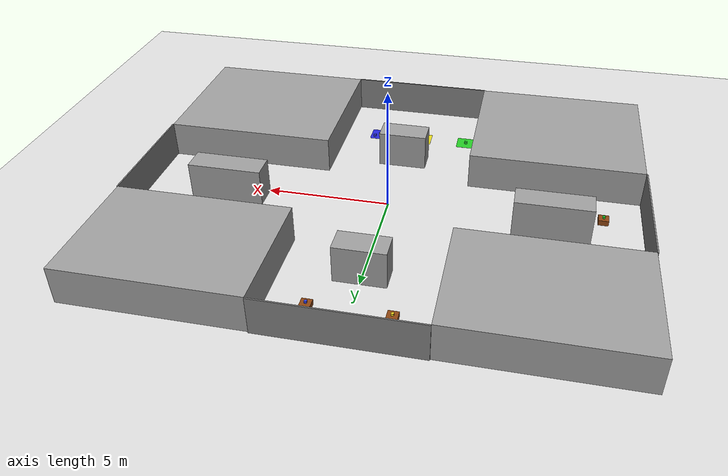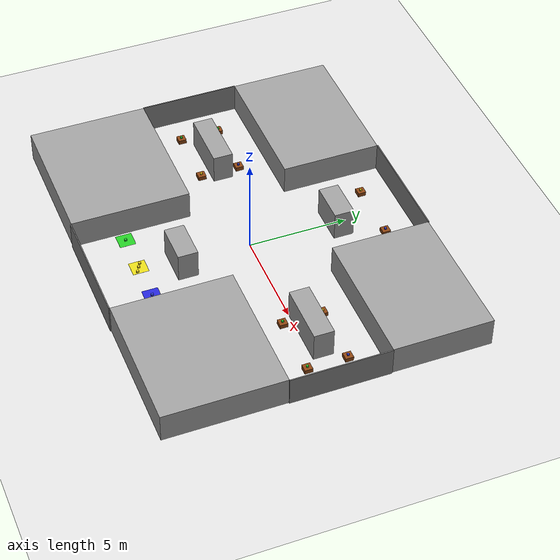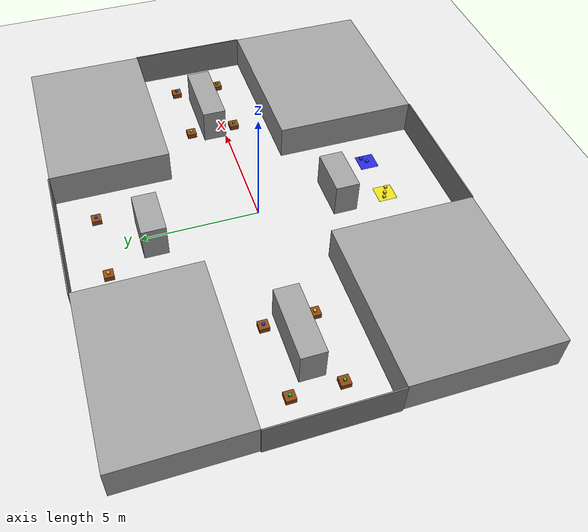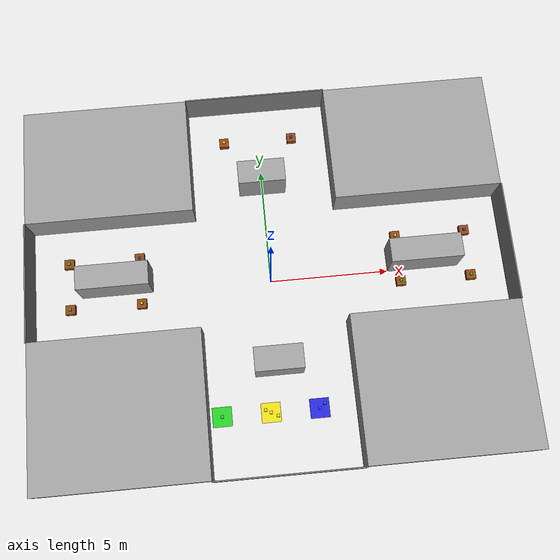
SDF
<sdf version="1.6">
 <world name="warehouse_cross">
  <light name="sun" type="directional">
   <pose>0 0 10 0 0 0</pose>
   <diffuse>0.8 0.8 0.8 1</diffuse>
   <specular>0.2 0.2 0.2 1</specular>
   <attenuation>
    <range>1000</range>
    <constant>0.9</constant>
    <linear>0.01</linear>
    <quadratic>0.001</quadratic>
   </attenuation>
   <direction>-0.5 0.1 -0.9</direction>
  </light>
  <model name="ground_plane">
   <static>true</static>
   <link name="link">
    <collision name="collision">
     <geometry><plane><normal>0 0 1</normal><size>100 100</size></plane></geometry>
     <surface><friction><ode><mu>100</mu><mu2>50</mu2></ode></friction></surface>
    </collision>
    <visual name="visual">
     <cast_shadows>false</cast_shadows>
     <geometry><plane><normal>0 0 1</normal><size>100 100</size></plane></geometry>
     <material><ambient>0.88 0.88 0.88 1</ambient><diffuse>0.88 0.88 0.88 1</diffuse></material>
    </visual>
   </link>
  </model>
  <physics name="default_physics" default="0" type="ode">
   <gravity>0 0 -9.8</gravity>
   <ode>
    <solver><type>quick</type><iters>50</iters><sor>1.3</sor></solver>
    <constraints>
     <cfm>0</cfm>
     <erp>0.2</erp>
     <contact_max_correcting_vel>100</contact_max_correcting_vel>
     <contact_surface_layer>0.001</contact_surface_layer>
    </constraints>
   </ode>
   <real_time_update_rate>1000</real_time_update_rate>
   <max_step_size>0.001</max_step_size>
  </physics>
  <model name="boundary_north">
   <static>true</static>
   <pose>0.0 8.025 0.75 0 0 0</pose>
   <link name="link">
    <collision name="col"><geometry><box><size>6.0 0.05 1.5</size></box></geometry></collision>
    <visual name="vis">
     <geometry><box><size>6.0 0.05 1.5</size></box></geometry>
     <material><ambient>0.5 0.5 0.5 1</ambient><diffuse>0.5 0.5 0.5 1</diffuse></material>
    </visual>
   </link>
  </model>
  <model name="boundary_south">
   <static>true</static>
   <pose>0.0 -8.025 0.75 0 0 0</pose>
   <link name="link">
    <collision name="col"><geometry><box><size>6.0 0.05 1.5</size></box></geometry></collision>
    <visual name="vis">
     <geometry><box><size>6.0 0.05 1.5</size></box></geometry>
     <material><ambient>0.5 0.5 0.5 1</ambient><diffuse>0.5 0.5 0.5 1</diffuse></material>
    </visual>
   </link>
  </model>
  <model name="boundary_west">
   <static>true</static>
   <pose>-10.025 0.5 0.75 0 0 0</pose>
   <link name="link">
    <collision name="col"><geometry><box><size>0.05 5.0 1.5</size></box></geometry></collision>
    <visual name="vis">
     <geometry><box><size>0.05 5.0 1.5</size></box></geometry>
     <material><ambient>0.5 0.5 0.5 1</ambient><diffuse>0.5 0.5 0.5 1</diffuse></material>
    </visual>
   </link>
  </model>
  <model name="boundary_east">
   <static>true</static>
   <pose>10.025 0.5 0.75 0 0 0</pose>
   <link name="link">
    <collision name="col"><geometry><box><size>0.05 5.0 1.5</size></box></geometry></collision>
    <visual name="vis">
     <geometry><box><size>0.05 5.0 1.5</size></box></geometry>
     <material><ambient>0.5 0.5 0.5 1</ambient><diffuse>0.5 0.5 0.5 1</diffuse></material>
    </visual>
   </link>
  </model>
  <model name="wall_nw">
   <static>true</static>
   <pose>-6.5 5.5 0.75 0 0 0</pose>
   <link name="link">
    <collision name="col"><geometry><box><size>7.0 5.0 1.5</size></box></geometry></collision>
    <visual name="vis">
     <geometry><box><size>7.0 5.0 1.5</size></box></geometry>
     <material><ambient>0.62 0.62 0.62 1</ambient><diffuse>0.62 0.62 0.62 1</diffuse></material>
    </visual>
   </link>
  </model>
  <model name="wall_ne">
   <static>true</static>
   <pose>6.5 5.5 0.75 0 0 0</pose>
   <link name="link">
    <collision name="col"><geometry><box><size>7.0 5.0 1.5</size></box></geometry></collision>
    <visual name="vis">
     <geometry><box><size>7.0 5.0 1.5</size></box></geometry>
     <material><ambient>0.62 0.62 0.62 1</ambient><diffuse>0.62 0.62 0.62 1</diffuse></material>
    </visual>
   </link>
  </model>
  <model name="wall_n_btl">
   <static>true</static>
   <pose>0.0 4.5 0.75 0 0 0</pose>
   <link name="link">
    <collision name="col"><geometry><box><size>2.0 1.0 1.5</size></box></geometry></collision>
    <visual name="vis">
     <geometry><box><size>2.0 1.0 1.5</size></box></geometry>
     <material><ambient>0.62 0.62 0.62 1</ambient><diffuse>0.62 0.62 0.62 1</diffuse></material>
    </visual>
   </link>
  </model>
  <model name="wall_sw">
   <static>true</static>
   <pose>-6.5 -5.0 0.75 0 0 0</pose>
   <link name="link">
    <collision name="col"><geometry><box><size>7.0 6.0 1.5</size></box></geometry></collision>
    <visual name="vis">
     <geometry><box><size>7.0 6.0 1.5</size></box></geometry>
     <material><ambient>0.62 0.62 0.62 1</ambient><diffuse>0.62 0.62 0.62 1</diffuse></material>
    </visual>
   </link>
  </model>
  <model name="wall_se">
   <static>true</static>
   <pose>6.5 -5.0 0.75 0 0 0</pose>
   <link name="link">
    <collision name="col"><geometry><box><size>7.0 6.0 1.5</size></box></geometry></collision>
    <visual name="vis">
     <geometry><box><size>7.0 6.0 1.5</size></box></geometry>
     <material><ambient>0.62 0.62 0.62 1</ambient><diffuse>0.62 0.62 0.62 1</diffuse></material>
    </visual>
   </link>
  </model>
  <model name="wall_s_btl">
   <static>true</static>
   <pose>0.0 -3.5 0.75 0 0 0</pose>
   <link name="link">
    <collision name="col"><geometry><box><size>2.0 1.0 1.5</size></box></geometry></collision>
    <visual name="vis">
     <geometry><box><size>2.0 1.0 1.5</size></box></geometry>
     <material><ambient>0.62 0.62 0.62 1</ambient><diffuse>0.62 0.62 0.62 1</diffuse></material>
    </visual>
   </link>
  </model>
  <model name="wall_corridor_w">
   <static>true</static>
   <pose>-6.5 0.5 0.75 0 0 0</pose>
   <link name="link">
    <collision name="col"><geometry><box><size>3.0 1.0 1.5</size></box></geometry></collision>
    <visual name="vis">
     <geometry><box><size>3.0 1.0 1.5</size></box></geometry>
     <material><ambient>0.62 0.62 0.62 1</ambient><diffuse>0.62 0.62 0.62 1</diffuse></material>
    </visual>
   </link>
  </model>
  <model name="wall_corridor_e">
   <static>true</static>
   <pose>6.5 0.5 0.75 0 0 0</pose>
   <link name="link">
    <collision name="col"><geometry><box><size>3.0 1.0 1.5</size></box></geometry></collision>
    <visual name="vis">
     <geometry><box><size>3.0 1.0 1.5</size></box></geometry>
     <material><ambient>0.62 0.62 0.62 1</ambient><diffuse>0.62 0.62 0.62 1</diffuse></material>
    </visual>
   </link>
  </model>
  <model name="shelf_0">
   <static>true</static>
   <pose>-1.5 6.5 0.11 0 0 0</pose>
   <link name="link">
    <collision name="col"><geometry><box><size>0.4 0.4 0.22</size></box></geometry></collision>
    <visual name="vis">
     <geometry><box><size>0.4 0.4 0.22</size></box></geometry>
     <material><ambient>0.55 0.27 0.07 1</ambient><diffuse>0.55 0.27 0.07 1</diffuse></material>
    </visual>
   </link>
  </model>
  <model name="shelf_1">
   <static>true</static>
   <pose>1.5 6.5 0.11 0 0 0</pose>
   <link name="link">
    <collision name="col"><geometry><box><size>0.4 0.4 0.22</size></box></geometry></collision>
    <visual name="vis">
     <geometry><box><size>0.4 0.4 0.22</size></box></geometry>
     <material><ambient>0.55 0.27 0.07 1</ambient><diffuse>0.55 0.27 0.07 1</diffuse></material>
    </visual>
   </link>
  </model>
  <model name="shelf_2">
   <static>true</static>
   <pose>-8.5 1.5 0.11 0 0 0</pose>
   <link name="link">
    <collision name="col"><geometry><box><size>0.4 0.4 0.22</size></box></geometry></collision>
    <visual name="vis">
     <geometry><box><size>0.4 0.4 0.22</size></box></geometry>
     <material><ambient>0.55 0.27 0.07 1</ambient><diffuse>0.55 0.27 0.07 1</diffuse></material>
    </visual>
   </link>
  </model>
  <model name="shelf_3">
   <static>true</static>
   <pose>-5.5 1.5 0.11 0 0 0</pose>
   <link name="link">
    <collision name="col"><geometry><box><size>0.4 0.4 0.22</size></box></geometry></collision>
    <visual name="vis">
     <geometry><box><size>0.4 0.4 0.22</size></box></geometry>
     <material><ambient>0.55 0.27 0.07 1</ambient><diffuse>0.55 0.27 0.07 1</diffuse></material>
    </visual>
   </link>
  </model>
  <model name="shelf_4">
   <static>true</static>
   <pose>-8.5 -0.5 0.11 0 0 0</pose>
   <link name="link">
    <collision name="col"><geometry><box><size>0.4 0.4 0.22</size></box></geometry></collision>
    <visual name="vis">
     <geometry><box><size>0.4 0.4 0.22</size></box></geometry>
     <material><ambient>0.55 0.27 0.07 1</ambient><diffuse>0.55 0.27 0.07 1</diffuse></material>
    </visual>
   </link>
  </model>
  <model name="shelf_5">
   <static>true</static>
   <pose>-5.5 -0.5 0.11 0 0 0</pose>
   <link name="link">
    <collision name="col"><geometry><box><size>0.4 0.4 0.22</size></box></geometry></collision>
    <visual name="vis">
     <geometry><box><size>0.4 0.4 0.22</size></box></geometry>
     <material><ambient>0.55 0.27 0.07 1</ambient><diffuse>0.55 0.27 0.07 1</diffuse></material>
    </visual>
   </link>
  </model>
  <model name="shelf_6">
   <static>true</static>
   <pose>5.5 1.5 0.11 0 0 0</pose>
   <link name="link">
    <collision name="col"><geometry><box><size>0.4 0.4 0.22</size></box></geometry></collision>
    <visual name="vis">
     <geometry><box><size>0.4 0.4 0.22</size></box></geometry>
     <material><ambient>0.55 0.27 0.07 1</ambient><diffuse>0.55 0.27 0.07 1</diffuse></material>
    </visual>
   </link>
  </model>
  <model name="shelf_7">
   <static>true</static>
   <pose>8.5 1.5 0.11 0 0 0</pose>
   <link name="link">
    <collision name="col"><geometry><box><size>0.4 0.4 0.22</size></box></geometry></collision>
    <visual name="vis">
     <geometry><box><size>0.4 0.4 0.22</size></box></geometry>
     <material><ambient>0.55 0.27 0.07 1</ambient><diffuse>0.55 0.27 0.07 1</diffuse></material>
    </visual>
   </link>
  </model>
  <model name="shelf_8">
   <static>true</static>
   <pose>5.5 -0.5 0.11 0 0 0</pose>
   <link name="link">
    <collision name="col"><geometry><box><size>0.4 0.4 0.22</size></box></geometry></collision>
    <visual name="vis">
     <geometry><box><size>0.4 0.4 0.22</size></box></geometry>
     <material><ambient>0.55 0.27 0.07 1</ambient><diffuse>0.55 0.27 0.07 1</diffuse></material>
    </visual>
   </link>
  </model>
  <model name="shelf_9">
   <static>true</static>
   <pose>8.5 -0.5 0.11 0 0 0</pose>
   <link name="link">
    <collision name="col"><geometry><box><size>0.4 0.4 0.22</size></box></geometry></collision>
    <visual name="vis">
     <geometry><box><size>0.4 0.4 0.22</size></box></geometry>
     <material><ambient>0.55 0.27 0.07 1</ambient><diffuse>0.55 0.27 0.07 1</diffuse></material>
    </visual>
   </link>
  </model>
  <model name="delivery_A">
   <static>true</static>
   <pose>-2.5 -5.5 0.001 0 0 0</pose>
   <link name="link">
    <visual name="vis">
     <geometry><box><size>0.8 0.8 0.002</size></box></geometry>
     <material><ambient>0.15 0.80 0.15 1</ambient><diffuse>0.15 0.80 0.15 1</diffuse></material>
    </visual>
   </link>
  </model>
  <model name="delivery_B">
   <static>true</static>
   <pose>-0.5 -5.5 0.001 0 0 0</pose>
   <link name="link">
    <visual name="vis">
     <geometry><box><size>0.8 0.8 0.002</size></box></geometry>
     <material><ambient>0.90 0.85 0.10 1</ambient><diffuse>0.90 0.85 0.10 1</diffuse></material>
    </visual>
   </link>
  </model>
  <model name="delivery_C">
   <static>true</static>
   <pose>1.5 -5.5 0.001 0 0 0</pose>
   <link name="link">
    <visual name="vis">
     <geometry><box><size>0.8 0.8 0.002</size></box></geometry>
     <material><ambient>0.15 0.15 0.85 1</ambient><diffuse>0.15 0.15 0.85 1</diffuse></material>
    </visual>
   </link>
  </model>
  <model name="cargo_shelf_0">
   <static>true</static>
   <pose>-1.5 6.5 0.26 0 0 0</pose>
   <link name="link">
    <visual name="vis">
     <geometry><box><size>0.10 0.10 0.08</size></box></geometry>
     <material><ambient>0.95 0.82 0.10 1</ambient><diffuse>0.95 0.82 0.10 1</diffuse></material>
    </visual>
    <collision name="col"><geometry><box><size>0.10 0.10 0.08</size></box></geometry></collision>
   </link>
  </model>
  <model name="cargo_shelf_1">
   <static>true</static>
   <pose>1.5 6.5 0.26 0 0 0</pose>
   <link name="link">
    <visual name="vis">
     <geometry><box><size>0.10 0.10 0.08</size></box></geometry>
     <material><ambient>0.20 0.25 0.90 1</ambient><diffuse>0.20 0.25 0.90 1</diffuse></material>
    </visual>
    <collision name="col"><geometry><box><size>0.10 0.10 0.08</size></box></geometry></collision>
   </link>
  </model>
  <model name="cargo_shelf_2">
   <static>true</static>
   <pose>-8.5 1.5 0.26 0 0 0</pose>
   <link name="link">
    <visual name="vis">
     <geometry><box><size>0.10 0.10 0.08</size></box></geometry>
     <material><ambient>0.12 0.80 0.18 1</ambient><diffuse>0.12 0.80 0.18 1</diffuse></material>
    </visual>
    <collision name="col"><geometry><box><size>0.10 0.10 0.08</size></box></geometry></collision>
   </link>
  </model>
  <model name="cargo_shelf_3">
   <static>true</static>
   <pose>-5.5 1.5 0.26 0 0 0</pose>
   <link name="link">
    <visual name="vis">
     <geometry><box><size>0.10 0.10 0.08</size></box></geometry>
     <material><ambient>0.20 0.25 0.90 1</ambient><diffuse>0.20 0.25 0.90 1</diffuse></material>
    </visual>
    <collision name="col"><geometry><box><size>0.10 0.10 0.08</size></box></geometry></collision>
   </link>
  </model>
  <model name="cargo_shelf_4">
   <static>true</static>
   <pose>-8.5 -0.5 0.26 0 0 0</pose>
   <link name="link">
    <visual name="vis">
     <geometry><box><size>0.10 0.10 0.08</size></box></geometry>
     <material><ambient>0.12 0.80 0.18 1</ambient><diffuse>0.12 0.80 0.18 1</diffuse></material>
    </visual>
    <collision name="col"><geometry><box><size>0.10 0.10 0.08</size></box></geometry></collision>
   </link>
  </model>
  <model name="cargo_shelf_5">
   <static>true</static>
   <pose>-5.5 -0.5 0.26 0 0 0</pose>
   <link name="link">
    <visual name="vis">
     <geometry><box><size>0.10 0.10 0.08</size></box></geometry>
     <material><ambient>0.95 0.82 0.10 1</ambient><diffuse>0.95 0.82 0.10 1</diffuse></material>
    </visual>
    <collision name="col"><geometry><box><size>0.10 0.10 0.08</size></box></geometry></collision>
   </link>
  </model>
  <model name="cargo_shelf_6">
   <static>true</static>
   <pose>5.5 1.5 0.26 0 0 0</pose>
   <link name="link">
    <visual name="vis">
     <geometry><box><size>0.10 0.10 0.08</size></box></geometry>
     <material><ambient>0.95 0.82 0.10 1</ambient><diffuse>0.95 0.82 0.10 1</diffuse></material>
    </visual>
    <collision name="col"><geometry><box><size>0.10 0.10 0.08</size></box></geometry></collision>
   </link>
  </model>
  <model name="cargo_shelf_7">
   <static>true</static>
   <pose>8.5 1.5 0.26 0 0 0</pose>
   <link name="link">
    <visual name="vis">
     <geometry><box><size>0.10 0.10 0.08</size></box></geometry>
     <material><ambient>0.20 0.25 0.90 1</ambient><diffuse>0.20 0.25 0.90 1</diffuse></material>
    </visual>
    <collision name="col"><geometry><box><size>0.10 0.10 0.08</size></box></geometry></collision>
   </link>
  </model>
  <model name="cargo_shelf_8">
   <static>true</static>
   <pose>5.5 -0.5 0.26 0 0 0</pose>
   <link name="link">
    <visual name="vis">
     <geometry><box><size>0.10 0.10 0.08</size></box></geometry>
     <material><ambient>0.12 0.80 0.18 1</ambient><diffuse>0.12 0.80 0.18 1</diffuse></material>
    </visual>
    <collision name="col"><geometry><box><size>0.10 0.10 0.08</size></box></geometry></collision>
   </link>
  </model>
  <model name="cargo_shelf_9">
   <static>true</static>
   <pose>8.5 -0.5 0.26 0 0 0</pose>
   <link name="link">
    <visual name="vis">
     <geometry><box><size>0.10 0.10 0.08</size></box></geometry>
     <material><ambient>0.12 0.80 0.18 1</ambient><diffuse>0.12 0.80 0.18 1</diffuse></material>
    </visual>
    <collision name="col"><geometry><box><size>0.10 0.10 0.08</size></box></geometry></collision>
   </link>
  </model>
  <model name="cargo_del_A0">
   <static>true</static>
   <pose>-2.5 -5.5 0.045 0 0 0</pose>
   <link name="link">
    <visual name="vis">
     <geometry><box><size>0.12 0.12 0.09</size></box></geometry>
     <material><ambient>0.12 0.80 0.18 1</ambient><diffuse>0.12 0.80 0.18 1</diffuse></material>
    </visual>
    <collision name="col"><geometry><box><size>0.12 0.12 0.09</size></box></geometry></collision>
   </link>
  </model>
  <model name="cargo_del_B0">
   <static>true</static>
   <pose>-0.5 -5.5 0.045 0 0 0</pose>
   <link name="link">
    <visual name="vis">
     <geometry><box><size>0.12 0.12 0.09</size></box></geometry>
     <material><ambient>0.95 0.82 0.10 1</ambient><diffuse>0.95 0.82 0.10 1</diffuse></material>
    </visual>
    <collision name="col"><geometry><box><size>0.12 0.12 0.09</size></box></geometry></collision>
   </link>
  </model>
  <model name="cargo_del_B1">
   <static>true</static>
   <pose>-0.22 -5.65 0.045 0 0 0</pose>
   <link name="link">
    <visual name="vis">
     <geometry><box><size>0.12 0.12 0.09</size></box></geometry>
     <material><ambient>0.95 0.82 0.10 1</ambient><diffuse>0.95 0.82 0.10 1</diffuse></material>
    </visual>
    <collision name="col"><geometry><box><size>0.12 0.12 0.09</size></box></geometry></collision>
   </link>
  </model>
  <model name="cargo_del_B2">
   <static>true</static>
   <pose>-0.72 -5.38 0.045 0 0 0</pose>
   <link name="link">
    <visual name="vis">
     <geometry><box><size>0.12 0.12 0.09</size></box></geometry>
     <material><ambient>0.95 0.82 0.10 1</ambient><diffuse>0.95 0.82 0.10 1</diffuse></material>
    </visual>
    <collision name="col"><geometry><box><size>0.12 0.12 0.09</size></box></geometry></collision>
   </link>
  </model>
  <model name="cargo_del_C0">
   <static>true</static>
   <pose>1.5 -5.5 0.045 0 0 0</pose>
   <link name="link">
    <visual name="vis">
     <geometry><box><size>0.12 0.12 0.09</size></box></geometry>
     <material><ambient>0.20 0.25 0.90 1</ambient><diffuse>0.20 0.25 0.90 1</diffuse></material>
    </visual>
    <collision name="col"><geometry><box><size>0.12 0.12 0.09</size></box></geometry></collision>
   </link>
  </model>
  <model name="cargo_del_C1">
   <static>true</static>
   <pose>1.72 -5.32 0.045 0 0 0</pose>
   <link name="link">
    <visual name="vis">
     <geometry><box><size>0.12 0.12 0.09</size></box></geometry>
     <material><ambient>0.20 0.25 0.90 1</ambient><diffuse>0.20 0.25 0.90 1</diffuse></material>
    </visual>
    <collision name="col"><geometry><box><size>0.12 0.12 0.09</size></box></geometry></collision>
   </link>
  </model>
 </world>
</sdf>
